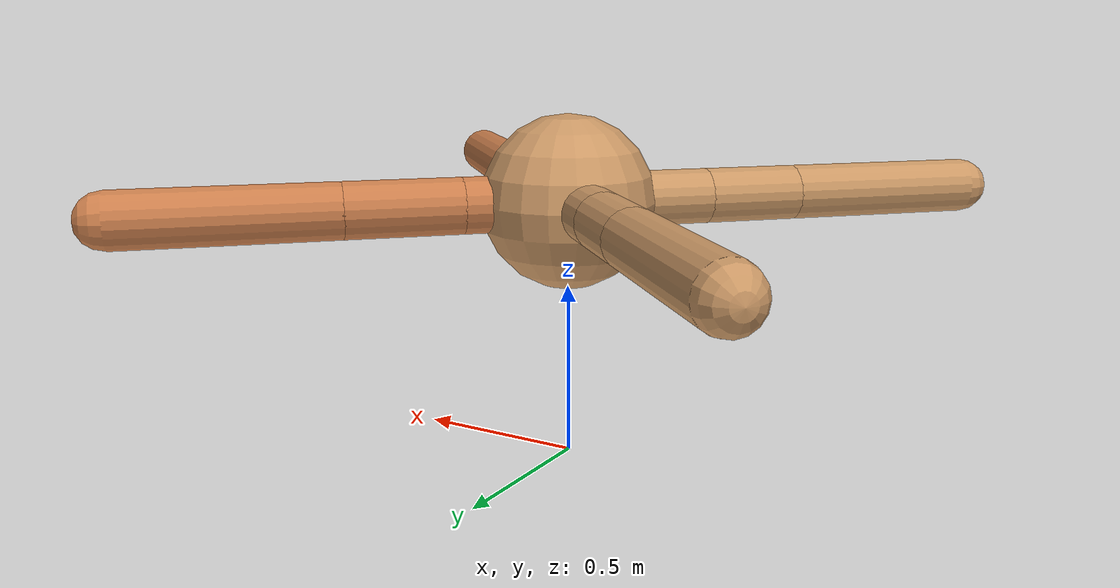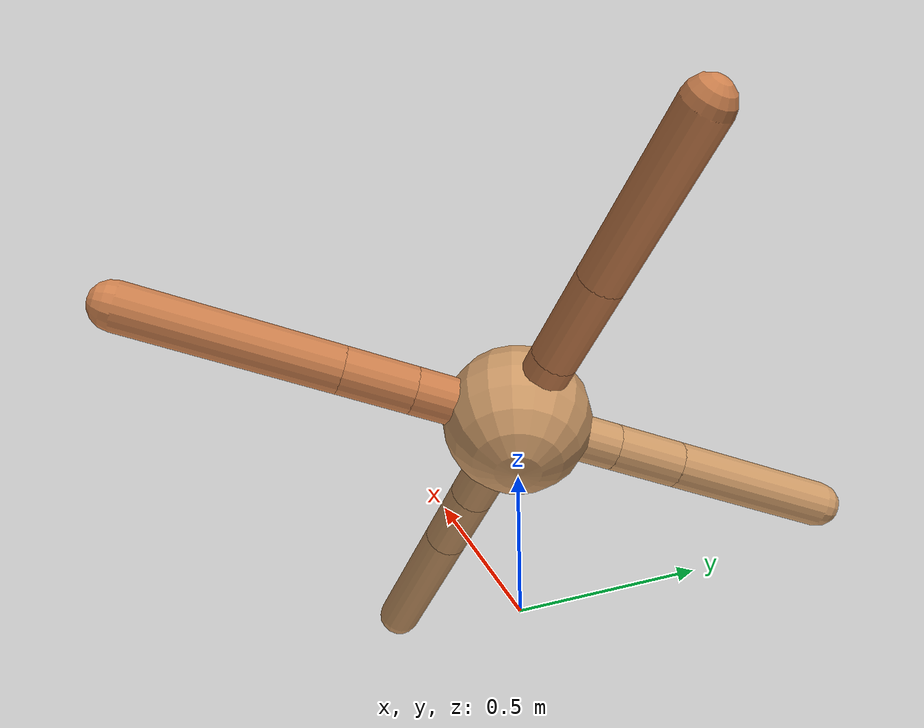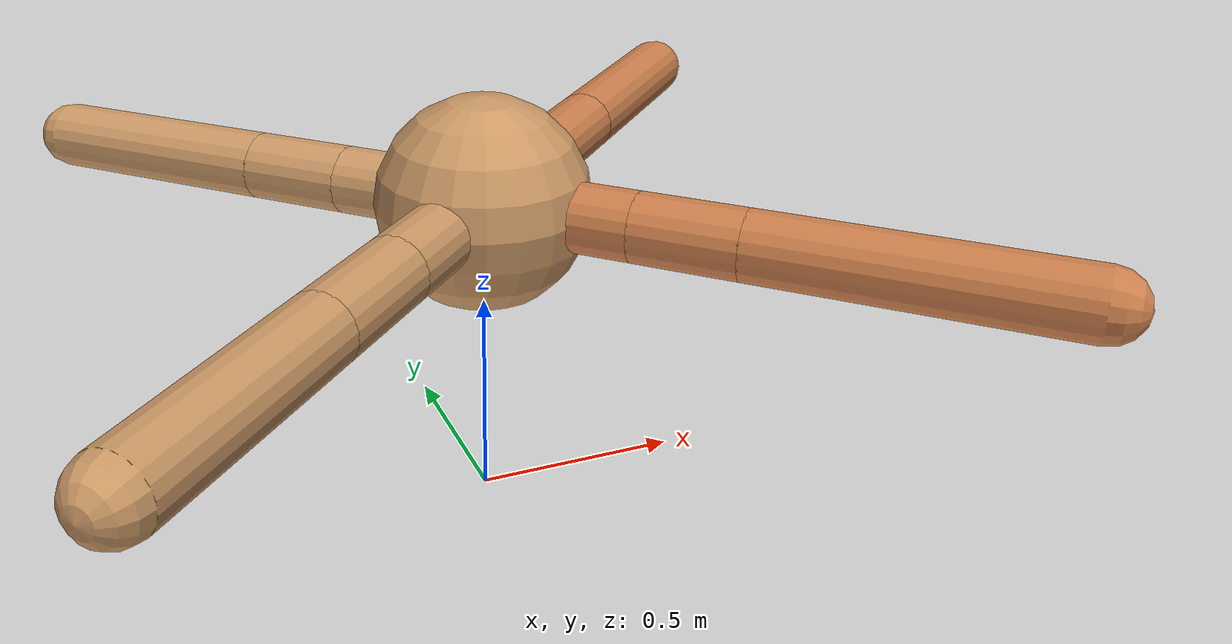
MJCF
<mujoco model="ant">
  <compiler angle="degree" coordinate="local" inertiafromgeom="true" />
  <option integrator="RK4" timestep="0.01" />
  <custom>
    <numeric data="0.0 0.0 0.55 1.0 0.0 0.0 0.0 0.0 1.0 0.0 -1.0 0.0 -1.0 0.0 1.0" name="init_qpos" />
  </custom>
  <default>
    <joint armature="1" damping="1" limited="true" />
    <geom conaffinity="0" condim="3" density="5.0" friction="1.5 0.1 0.1" margin="0.01" rgba="0.8 0.6 0.4 1" />
  </default>
  <worldbody>
    <body name="torso" pos="0 0 0.75">
      <geom name="torso_geom" pos="0 0 0" size="0.25" type="sphere" />

      <body name="front_left_leg" pos="0 0 0">
        <geom fromto="0.0 0.0 0.0 0.21498926926951023 0.21498926926951023 0.0" name="aux_1_geom" size="0.08" type="capsule" rgba=".8 .5 .3 1" />
        <body name="aux_1" pos="0.21498926926951023 0.21498926926951023 0.0">
          <joint axis="0 0 1" name="hip_1" pos="0.0 0.0 0.0" range="-40 40" type="hinge" />
          <geom fromto="0.0 0.0 0.0 0.23293182239549406 0.23293182239549406 0.0" name="left_leg_geom" size="0.08" type="capsule" rgba=".8 .5 .3 1" />
          <body pos="0.23293182239549406 0.23293182239549406 0.0" name="front_left_foot">
            <joint axis="-1 1 0" name="ankle_1" pos="0.0 0.0 0.0" range="30 100" type="hinge" />
            <geom fromto="0.0 0.0 0.0 0.42679135787668215 0.42679135787668215 0.0" name="left_ankle_geom" size="0.08" type="capsule" rgba=".8 .5 .3 1" />
          </body>
        </body>
      </body>
      <body name="front_right_leg" pos="0 0 0">
        <geom fromto="0.0 0.0 0.0 -0.25049244554857486 0.25049244554857486 0.0" name="aux_2_geom" size="0.08" type="capsule" />
        <body name="aux_2" pos="-0.25049244554857486 0.25049244554857486 0.0">
          <joint axis="0 0 1" name="hip_2" pos="0.0 0.0 0.0" range="-40 40" type="hinge" />
          <geom fromto="0.0 0.0 0.0 -0.17087089355176507 0.17087089355176507 0.0" name="right_leg_geom" size="0.08" type="capsule" />
          <body pos="-0.17087089355176507 0.17087089355176507 0.0" name="front_right_foot">
            <joint axis="1 1 0" name="ankle_2" pos="0.0 0.0 0.0" range="-100 -30" type="hinge" />
            <geom fromto="0.0 0.0 0.0 -0.4130144870220731 0.4130144870220731 0.0" name="right_ankle_geom" size="0.08" type="capsule" />
          </body>
        </body>
      </body>
      <body name="left_back_leg" pos="0 0 0">
        <geom fromto="0.0 0.0 0.0 -0.29567571936785625 -0.29567571936785625 0.0" name="aux_3_geom" size="0.08" type="capsule" />
        <body name="aux_3" pos="-0.29567571936785625 -0.29567571936785625 0.0">
          <joint axis="0 0 1" name="hip_3" pos="0.0 0.0 0.0" range="-40 40" type="hinge" />
          <geom fromto="0.0 0.0 0.0 -0.19510922707588382 -0.19510922707588382 0.0" name="back_leg_geom" size="0.08" type="capsule" />
          <body pos="-0.19510922707588382 -0.19510922707588382 0.0" name="left_back_foot">
            <joint axis="-1 1 0" name="ankle_3" pos="0.0 0.0 0.0" range="-100 -30" type="hinge" />
            <geom fromto="0.0 0.0 0.0 -0.4025390164031958 -0.4025390164031958 0.0" name="third_ankle_geom" size="0.08" type="capsule" />
          </body>
        </body>
      </body>
      <body name="right_back_leg" pos="0 0 0">
        <geom fromto="0.0 0.0 0.0 0.25851060217188093 -0.25851060217188093 0.0" name="aux_4_geom" size="0.08" type="capsule" rgba=".8 .5 .3 1" />
        <body name="aux_4" pos="0.25851060217188093 -0.25851060217188093 0.0">
          <joint axis="0 0 1" name="hip_4" pos="0.0 0.0 0.0" range="-40 40" type="hinge" />
          <geom fromto="0.0 0.0 0.0 0.1705164238124679 -0.1705164238124679 0.0" name="rightback_leg_geom" size="0.08" type="capsule" rgba=".8 .5 .3 1" />
          <body pos="0.1705164238124679 -0.1705164238124679 0.0" name="right_back_foot">
            <joint axis="1 1 0" name="ankle_4" pos="0.0 0.0 0.0" range="30 100" type="hinge" />
            <geom fromto="0.0 0.0 0.0 0.493469736350267 -0.493469736350267 0.0" name="fourth_ankle_geom" size="0.08" type="capsule" rgba=".8 .5 .3 1" />
          </body>
        </body>
      </body>
    </body>
  </worldbody>
  <actuator>
    <motor ctrllimited="true" ctrlrange="-1.0 1.0" joint="hip_4" gear="150" />
    <motor ctrllimited="true" ctrlrange="-1.0 1.0" joint="ankle_4" gear="150" />
    <motor ctrllimited="true" ctrlrange="-1.0 1.0" joint="hip_1" gear="150" />
    <motor ctrllimited="true" ctrlrange="-1.0 1.0" joint="ankle_1" gear="150" />
    <motor ctrllimited="true" ctrlrange="-1.0 1.0" joint="hip_2" gear="150" />
    <motor ctrllimited="true" ctrlrange="-1.0 1.0" joint="ankle_2" gear="150" />
    <motor ctrllimited="true" ctrlrange="-1.0 1.0" joint="hip_3" gear="150" />
    <motor ctrllimited="true" ctrlrange="-1.0 1.0" joint="ankle_3" gear="150" />
  </actuator>
</mujoco>
